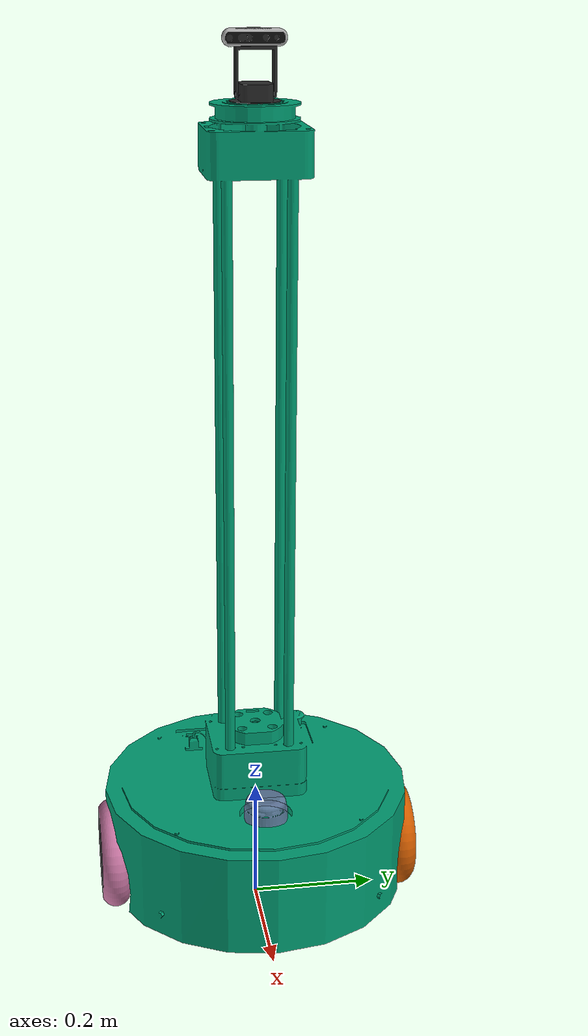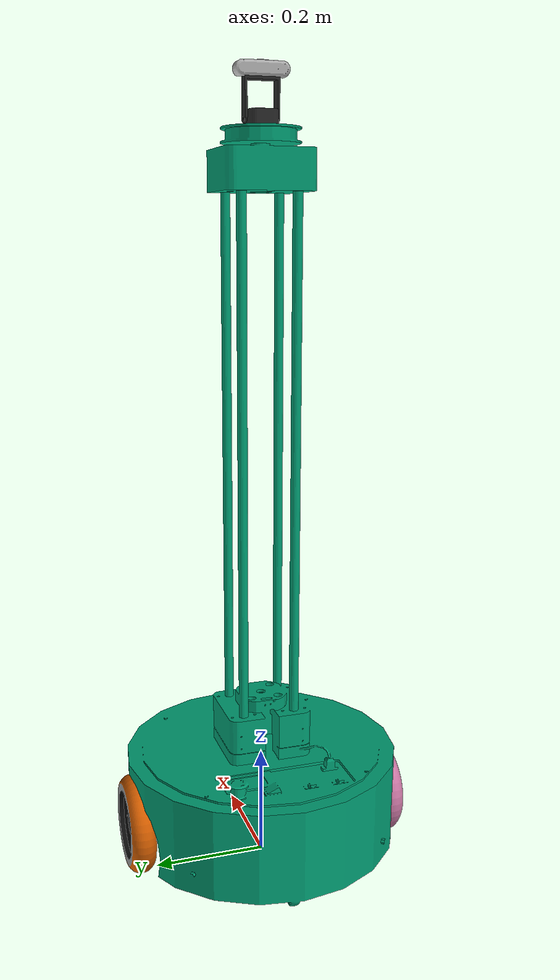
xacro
<?xml version="1.0"?>
<robot xmlns:controller="http://playerstage.sourceforge.net/gazebo/xmlschema/#controller"
  xmlns:interface="http://playerstage.sourceforge.net/gazebo/xmlschema/#interface"
  xmlns:sensor="http://playerstage.sourceforge.net/gazebo/xmlschema/#sensor"
  xmlns:xacro="http://ros.org/wiki/xacro"
  name="sick_tim">

  <xacro:include filename="$(find robot_sim_demo)/urdf/sick_tim.urdf.xacro" />

  <!-- Choose your laser -->
  <xacro:rplidarA2 name="laser" ros_topic="scan"   />

  <xacro:include filename="$(find robot_sim_demo)/urdf/materials.xacro" />
  <xacro:include filename="$(find robot_sim_demo)/urdf/xbot-u.urdf.xacro" />
  <xacro:include filename="$(find robot_sim_demo)/urdf/xbot-u.gazebo" />
  <xacro:xbot2_base/>

</robot>

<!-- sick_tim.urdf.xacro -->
<robot xmlns:controller="http://playerstage.sourceforge.net/gazebo/xmlschema/#controller"
  xmlns:interface="http://playerstage.sourceforge.net/gazebo/xmlschema/#interface"
  xmlns:sensor="http://playerstage.sourceforge.net/gazebo/xmlschema/#sensor"
  xmlns:xacro="http://ros.org/wiki/xacro">

  <xacro:macro name="rplidarA2" params="name ros_topic">
    <xacro:sick_tim name="${name}" ros_topic="${ros_topic}"
      length="0.06" width="0.06" height="0.079" mass="0.150" z_offset="0.05595"
      min_range="0.2" max_range="8.0"
      mesh="package://robot_sim_demo/models/meshes/rplidar.dae" />
  </xacro:macro>

  <xacro:macro name="sick_tim310" params="name ros_topic">
    <xacro:sick_tim name="${name}" ros_topic="${ros_topic}"
      length="0.06" width="0.06" height="0.079" mass="0.150" z_offset="0.05595"
      min_range="0.05" max_range="4.0"
      mesh="package://robot_sim_demo/models/meshes/sick_tim310.stl" />
  </xacro:macro>

  <xacro:macro name="sick_tim551" params="name ros_topic">
    <xacro:sick_tim name="${name}" ros_topic="${ros_topic}"
      length="0.06" width="0.06" height="0.086" mass="0.250" z_offset="0.06296"
      min_range="0.05" max_range="10.0"
      mesh="package://robot_sim_demo/models/meshes/sick_tim551.stl" />
  </xacro:macro>

  <xacro:macro name="sick_tim571" params="name ros_topic">
    <xacro:sick_tim name="${name}" ros_topic="${ros_topic}"
      length="0.06" width="0.06" height="0.086" mass="0.250" z_offset="0.02"
      min_range="0.05" max_range="25.0"
      mesh="package://robot_sim_demo/models/meshes/sick_tim571.stl" />
  </xacro:macro>

  <xacro:macro name="sick_tim" params="name ros_topic length width height mass z_offset min_range max_range mesh">
    <!-- z_offset: distance between base plate and laser center (= center of mesh) -->

    <joint name="${name}_joint" type="fixed">
      <parent link="${name}_mount_link" />
      <child link="${name}" />
      <origin rpy="0 0 0" xyz="0 0 ${z_offset}"/>
    </joint>

    <link name="${name}">
      <visual>
        <geometry>
          <mesh filename="${mesh}" />
        </geometry>
        <material name="lightblue">
          <color rgba=".5 .5 .7 .8" />
        </material>
      </visual>
      <collision>
        <geometry>
          <mesh filename="${mesh}" />
        </geometry>
      </collision>
      <inertial>
        <mass value="${mass}" />
        <origin xyz="0 0 -0.026" />
        <inertia ixx="${0.0833333 * mass * (width * width + height * height)}" ixy="0.0" ixz="0.0"
          iyy="${0.0833333 * mass * (length * length + height * height)}" iyz="0.0"
          izz="${0.0833333 * mass * (length * length + width * width)}" />
      </inertial>
    </link>
    <xacro:sick_tim_laser_gazebo_v0 name="${name}" link="${name}" ros_topic="${ros_topic}"
    update_rate="15.0" min_angle="-2.357" max_angle="2.357" min_range="${min_range}" max_range="${max_range}"/>
    <!--update_rate=15.0-->
  </xacro:macro>

  <xacro:macro name="sick_tim_laser_gazebo_v0" params="name link ros_topic update_rate min_angle max_angle min_range max_range">
    <gazebo reference="${link}">
      <material value="Gazebo/LightWood" />
      <sensor type="ray" name="${name}">
      <!--sensor type="ray" name="${name}"-->
        <always_on>true</always_on>
        <update_rate>${update_rate}</update_rate>
        <pose>0 0 0 0 0 0</pose>
        <visualize>false</visualize>
        <ray>
          <scan>
            <horizontal>
              <samples>810</samples>
              <resolution>1</resolution>
              <min_angle>${min_angle}</min_angle>
              <max_angle>${max_angle}</max_angle>
            </horizontal>
          </scan>
          <range>
            <min>${min_range}</min>
            <max>${max_range}</max>
            <resolution>0.01</resolution>
          </range>
        </ray>

        <plugin name="gazebo_ros_${name}_controller" filename="libgazebo_ros_laser.so">
        <!-- plugin name="gazebo_ros_${name}_controller" filename="libgazebo_ros_laser.so" -->
          <gaussianNoise>0.01</gaussianNoise>
          <alwaysOn>true</alwaysOn>
          <updateRate>${update_rate}</updateRate>
          <topicName>${ros_topic}</topicName>
          <frameName>${link}</frameName>
        </plugin>
      </sensor>
    </gazebo>
  </xacro:macro>
</robot>

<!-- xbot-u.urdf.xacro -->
<robot xmlns:controller="http://playerstage.sourceforge.net/gazebo/xmlschema/#controller"
  xmlns:interface="http://playerstage.sourceforge.net/gazebo/xmlschema/#interface"
  xmlns:sensor="http://playerstage.sourceforge.net/gazebo/xmlschema/#sensor"
  xmlns:xacro="http://ros.org/wiki/xacro">

  <xacro:macro name="xbot2_base">
  <link name="base_footprint"/>
  <joint name="base_footprint_to_base" type="fixed">
    <axis rpy="0 0 0" xyz="0 0 0"/>
    <parent link="base_footprint"/>
    <child link="base_link"/>
    <origin rpy="0 0 0" xyz="0 0 0"/>
  </joint>

  <link name="base_link">
    <inertial>
      <origin rpy="0 0 0" xyz="-0.015 0.0 0.0014" />
      <mass value="35" />
      <inertia ixx="0.6125" ixy="0.00495" ixz="0.0031" iyy="0.6426" iyz="-0.0017" izz="0.494" />
    </inertial>
    <visual>
      <origin xyz="0 0 0" rpy="0 0 0" />
      <geometry>
        <mesh filename="package://robot_sim_demo/models/meshes/base_link.dae" />
      </geometry>
    </visual>

    <collision name="front_omniwheel">
      <origin xyz="0.18 0 0.02" rpy="0 0 0" />
      <geometry>
        <sphere radius="0.019"/>
      </geometry>
    </collision>
    <collision name="back_omniwheel">
      <origin xyz="-0.18 0 0.02" rpy="0 0 0" />
      <geometry>
        <sphere radius="0.019"/>
      </geometry>
    </collision>
    <collision name="collision1">
      <origin xyz="0.0 0 0.135" rpy="0 0 0" />
      <geometry>
        <cylinder length="0.15" radius="0.25"/>
      </geometry>
    </collision>
    <collision name="collision2">
      <origin xyz="0.03 0 0.25" rpy="0 0 0" />
      <geometry>
        <cylinder length="0.08" radius="0.045"/>
      </geometry>
    </collision>
    <collision name="collision3">
      <origin xyz="0 0 0.68" rpy="0 0 0" />
      <geometry>
        <cylinder length="0.8" radius="0.08"/>
      </geometry>
    </collision>
    <collision name="collision4">
      <origin xyz="0 0 1.135" rpy="0 0 0" />
      <geometry>
        <box size="0.04 0.17 0.09"/>
      </geometry>
    </collision>
  </link>

  <link name="laser_mount_link"/>
  <joint name="base_to_laser" type="fixed">
    <axis rpy="0 0 0" xyz="0 0 0"/>
    <parent link="base_link"/>
    <child link="laser_mount_link"/>
    <origin rpy="0 0 0" xyz=".114 0 .17"/>
  </joint>

  <link name="imu_link"/>
  <joint name="base_to_imu" type="fixed">
    <axis rpy="0 0 0" xyz="0 0 0"/>
    <parent link="base_link"/>
    <child link="imu_link"/>
    <origin rpy="0 0 0" xyz="0 0 .2"/>
  </joint>

  <link name="left_wheel">
    <collision name="collision">
      <origin xyz="0 0 0" rpy="1.57079632 0 0"/>
      <geometry>
        <cylinder radius="0.095" length="0.05"/>
      </geometry>
    </collision>
    <visual name="left_wheel_visual">
      <origin xyz="0 0 0" rpy="0 0 -1.57079632"/>
      <geometry>
        <mesh filename="package://robot_sim_demo/models/meshes/wheel.dae" />
      </geometry>
    </visual>
    <inertial>
      <origin rpy="0 0 0" xyz="0 0 0" />
      <mass value="4.3542" />
      <inertia ixx="0.0045" ixy="0" ixz="0" iyy="0.005" iyz="0" izz="0.0045" />
    </inertial>
  </link>

  <joint type="continuous" name="left_wheel_hinge">
    <axis xyz="0 1 0" rpy="0 0 0"/>
    <origin xyz="0 0.23 .095" rpy="0 0 0"/>
    <parent link="base_link"/>
    <child link="left_wheel"/>
    <limit effort="6" velocity="1.0"/>
    <joint_properties damping="0.0" friction="0.0"/>
  </joint>

  <link name="right_wheel">
    <collision name="collision">
      <origin xyz="0 0 0" rpy="-1.57079632  0 0"/>
      <geometry>
        <cylinder radius="0.095" length="0.05"/>
      </geometry>
    </collision>
    <visual name="right_wheel_visual">
      <origin xyz="0 0 0" rpy="0 0 1.57079632"/>
      <geometry>
        <mesh filename="package://robot_sim_demo/models/meshes/wheel.dae" />
      </geometry>
    </visual>
    <inertial>
      <origin rpy="0 0 0" xyz="0 0 0" />
      <mass value="4.3542" />
      <inertia ixx="0.0045" ixy="0" ixz="0" iyy="0.005" iyz="0" izz="0.0045" />
    </inertial>
  </link>

  <joint type="continuous" name="right_wheel_hinge">
    <axis xyz="0 1 0" rpy="0 0 0"/>
    <origin xyz="0 -0.23 .095" rpy="0 0 0"/>
    <parent link="base_link"/>
    <child link="right_wheel"/>
    <limit effort="6" velocity="1.0"/>
    <joint_properties damping="0.0" friction="0.0"/>
  </joint>

  <link name="yaw_platform">
    <inertial>
      <mass value="1e-5" />
      <origin xyz="0 0 0" rpy="0 0 0"/>
      <inertia ixx="1e-6" ixy="0" ixz="0" iyy="1e-6" iyz="0" izz="1e-6" />
    </inertial>
    <visual>
      <origin xyz="0 0 0" rpy="0 0 1.57079632" />
      <geometry>
        <mesh filename="package://robot_sim_demo/models/meshes/yaw_platform.dae" />
      </geometry>
    </visual>
    <collision>
      <origin xyz="0 0 0" rpy="0 0 1.57079632" />
      <geometry>
        <box size="0.1 0.1 0.1"/>
      </geometry>
    </collision>
  </link>

  <joint name="base_to_yaw_platform" type="revolute">
    <axis xyz="0 0 1"/>
    <parent link="base_link"/>
    <child link="yaw_platform"/>
    <origin rpy="0 0 0" xyz="0 0 1.305"/>
    <limit effort="100" velocity="100" lower="-1.57" upper="1.57" />
    <dynamics damping="0.0" friction="10.0"/>
  </joint>

  <link name="pitch_platform">
    <inertial>
      <mass value="1e-5" />
      <origin xyz="0 0 0" rpy="0 0 0"/>
      <inertia ixx="1e-6" ixy="0" ixz="0" iyy="1e-6" iyz="0" izz="1e-6" />
    </inertial>
    <visual>
      <origin xyz="0 0 0" rpy="0 0 0" />
      <geometry>
        <mesh filename="package://robot_sim_demo/models/meshes/pitch_platform.dae" />
      </geometry>
    </visual>
    <collision>
      <origin xyz="0 0 0" rpy="0 0 0" />
      <geometry>
        <box size="0.1 0.1 0.1"/>
      </geometry>
    </collision>
  </link>

  <joint name="yaw_to_pitch_platform" type="revolute">
    <axis xyz="0 1 0"/>
    <parent link="yaw_platform"/>
    <child link="pitch_platform"/>
    <origin rpy="0 0 0" xyz="0 0 0"/>
    <limit effort="100" velocity="100" lower="-1.57" upper="1.57" />
    <dynamics damping="0.0" friction="10.0"/>
  </joint>

  <!-- Camera -->
  <link name="camera_link">
    <collision>
      <origin xyz="0 0 0" rpy="0 0 0"/>
      <geometry>
        <box size="0.1 0.1 0.1"/>
      </geometry>
    </collision>
    <visual>
      <origin xyz="0 0 0" rpy="0 0 0"/>
      <geometry>
        <mesh filename="package://robot_sim_demo/models/meshes/realsense.dae" />
      </geometry>
    </visual>
    <inertial>
      <mass value="1e-5" />
      <origin xyz="0 0 0" rpy="0 0 0"/>
      <inertia ixx="1e-6" ixy="0" ixz="0" iyy="1e-6" iyz="0" izz="1e-6" />
    </inertial>
  </link>

  <joint name="camera_joint" type="fixed">
    <axis xyz="0 1 0" />
    <origin xyz="-0.005 0 .06" rpy="0 0 0"/>
    <parent link="pitch_platform"/>
    <child link="camera_link"/>
  </joint>

  <!-- generate an optical frame http://www.ros.org/reps/rep-0103.html#suffix-frames
      so that ros and opencv can operate on the camera frame correctly -->
  <joint name="camera_optical_joint" type="fixed">
    <!-- these values have to be these values otherwise the gazebo camera image
        won't be aligned properly with the frame it is supposedly originating from -->
    <origin xyz="0 0 0" rpy="-1.5708 0 -1.5708"/>
    <parent link="camera_link"/>
    <child link="camera_link_optical"/>
  </joint>

  <link name="camera_link_optical">
  </link>

  </xacro:macro>
</robot>
